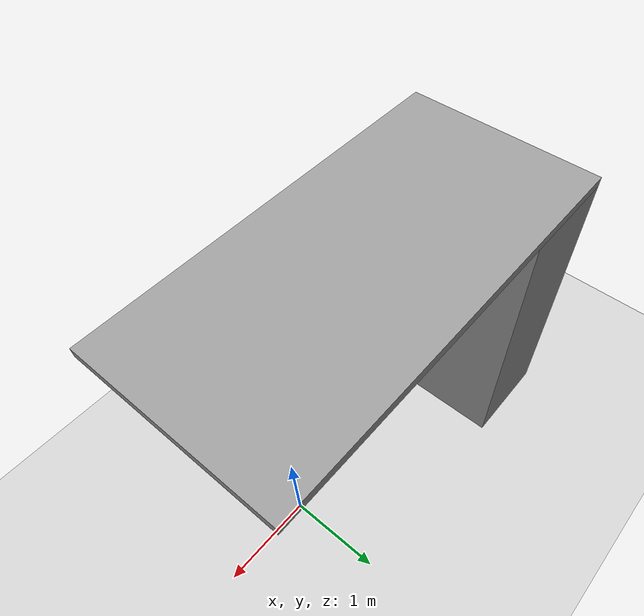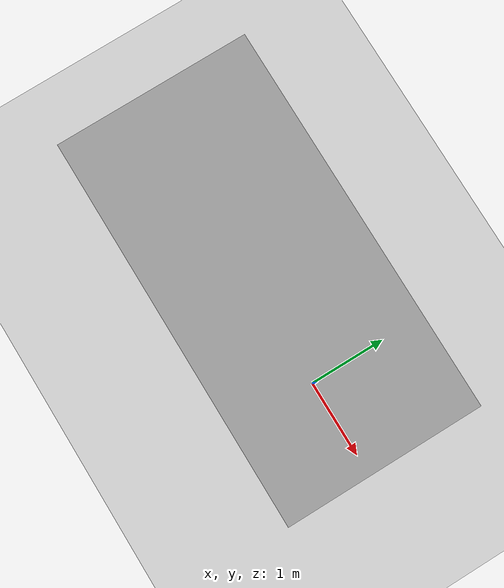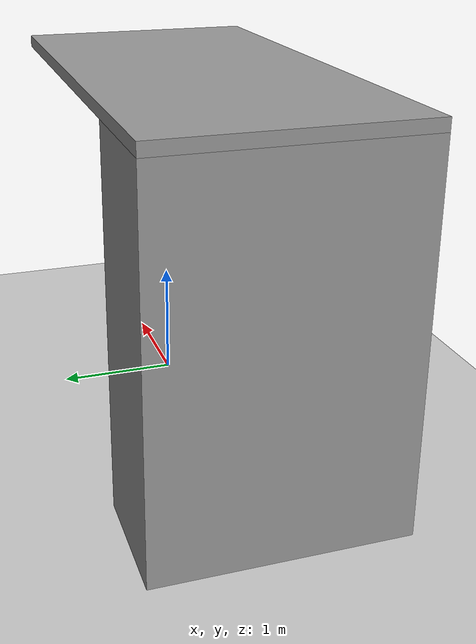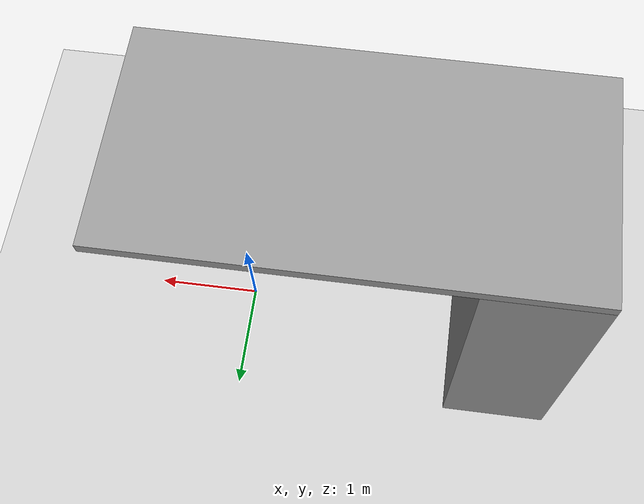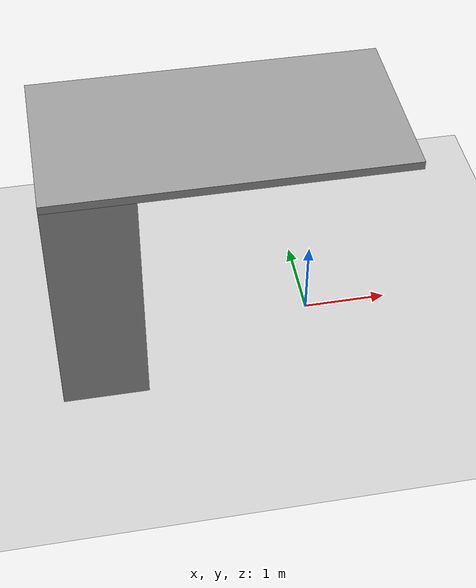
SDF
<sdf version="1.7">
 <world name="default">
  <model name="ground_plane">
   <static>1</static>
   <link name="link">
    <collision name="collision">
     <geometry><plane><normal>0 0 1</normal><size>100 100</size></plane></geometry>
     <surface>
      <contact><collide_bitmask>65535</collide_bitmask></contact>
      <friction><ode><mu>100</mu><mu2>50</mu2></ode></friction>
     </surface>
    </collision>
    <visual name="visual">
     <cast_shadows>0</cast_shadows>
     <geometry><plane><normal>0 0 1</normal><size>100 100</size></plane></geometry>
     <material>
      <script><uri>file://media/materials/scripts/gazebo.material</uri><name>Gazebo/Grey</name></script>
     </material>
    </visual>
   </link>
  </model>
  <model name="hang_model">
   <link name="link">
    <inertial>
     <mass>220</mass>
     <inertia><ixx>238.333</ixx><ixy>0</ixy><ixz>0</ixz><iyy>183.333</iyy><iyz>0</iyz><izz>91.6667</izz></inertia>
     <pose>0 0 0 0 -0.03 0</pose>
    </inertial>
    <visual name="visual">
     <geometry><box><size>1 2 3</size></box></geometry>
     <material>
      <script><name>Gazebo/Grey</name><uri>file://media/materials/scripts/gazebo.material</uri></script>
      <shader type="pixel"><normal_map>__default__</normal_map></shader>
      <ambient>0.3 0.3 0.3 1</ambient>
      <diffuse>0.7 0.7 0.7 1</diffuse>
      <specular>0.01 0.01 0.01 1</specular>
      <emissive>0 0 0 1</emissive>
     </material>
    </visual>
    <collision name="collision">
     <geometry><box><size>1 2 3</size></box></geometry>
     <surface>
      <friction>
       <ode><mu>1</mu><mu2>1</mu2><fdir1>0 0 0</fdir1><slip1>0</slip1><slip2>0</slip2></ode>
       <torsional>
        <coefficient>1</coefficient>
        <patch_radius>0</patch_radius>
        <surface_radius>0</surface_radius>
        <use_patch_radius>1</use_patch_radius>
        <ode><slip>0</slip></ode>
       </torsional>
      </friction>
      <bounce><restitution_coefficient>0</restitution_coefficient><threshold>1e+06</threshold></bounce>
      <contact>
       <collide_without_contact>0</collide_without_contact>
       <collide_without_contact_bitmask>1</collide_without_contact_bitmask>
       <collide_bitmask>1</collide_bitmask>
       <ode>
        <soft_cfm>0</soft_cfm>
        <soft_erp>0.2</soft_erp>
        <kp>1e+13</kp>
        <kd>1</kd>
        <max_vel>0.01</max_vel>
        <min_depth>0</min_depth>
       </ode>
       <bullet>
        <split_impulse>1</split_impulse>
        <split_impulse_penetration_threshold>-0.01</split_impulse_penetration_threshold>
        <soft_cfm>0</soft_cfm>
        <soft_erp>0.2</soft_erp>
        <kp>1e+13</kp>
        <kd>1</kd>
       </bullet>
      </contact>
     </surface>
    </collision>
   </link>
   <link name="link_clone">
    <inertial>
     <mass>10</mass>
     <inertia><ixx>3.34167</ixx><ixy>0</ixy><ixz>0</ixz><iyy>13.3417</iyy><iyz>0</iyz><izz>16.6667</izz></inertia>
    </inertial>
    <pose>1.5 -0 1.55 0 -0 -0.000177</pose>
    <visual name="visual">
     <geometry><box><size>4 2 0.1</size></box></geometry>
     <material>
      <script><name>Gazebo/Grey</name><uri>file://media/materials/scripts/gazebo.material</uri></script>
      <shader type="pixel"><normal_map>__default__</normal_map></shader>
      <ambient>0.3 0.3 0.3 1</ambient>
      <diffuse>0.7 0.7 0.7 1</diffuse>
      <specular>0.01 0.01 0.01 1</specular>
      <emissive>0 0 0 1</emissive>
     </material>
    </visual>
    <collision name="collision">
     <geometry><box><size>4 2 0.1</size></box></geometry>
     <surface>
      <friction>
       <ode><mu>1</mu><mu2>1</mu2><fdir1>0 0 0</fdir1><slip1>0</slip1><slip2>0</slip2></ode>
       <torsional>
        <coefficient>1</coefficient>
        <patch_radius>0</patch_radius>
        <surface_radius>0</surface_radius>
        <use_patch_radius>1</use_patch_radius>
        <ode><slip>0</slip></ode>
       </torsional>
      </friction>
      <bounce><restitution_coefficient>0</restitution_coefficient><threshold>1e+06</threshold></bounce>
      <contact>
       <collide_without_contact>0</collide_without_contact>
       <collide_without_contact_bitmask>1</collide_without_contact_bitmask>
       <collide_bitmask>1</collide_bitmask>
       <ode>
        <soft_cfm>0</soft_cfm>
        <soft_erp>0.2</soft_erp>
        <kp>1e+13</kp>
        <kd>1</kd>
        <max_vel>0.01</max_vel>
        <min_depth>0</min_depth>
       </ode>
       <bullet>
        <split_impulse>1</split_impulse>
        <split_impulse_penetration_threshold>-0.01</split_impulse_penetration_threshold>
        <soft_cfm>0</soft_cfm>
        <soft_erp>0.2</soft_erp>
        <kp>1e+13</kp>
        <kd>1</kd>
       </bullet>
      </contact>
     </surface>
    </collision>
   </link>
   <joint name="link_JOINT_0" type="fixed">
    <parent>link</parent>
    <child>link_clone</child>
    <pose>-1.5 0 0 0 -0 0</pose>
    <physics>
     <ode><limit><cfm>0</cfm><erp>0.2</erp></limit><suspension><cfm>0</cfm><erp>0.2</erp></suspension></ode>
    </physics>
   </joint>
   <static>0</static>
   <pose>-2.59383 0.017354 1.5 -1e-06 -0 -0.00122</pose>
  </model>
 </world>
</sdf>
